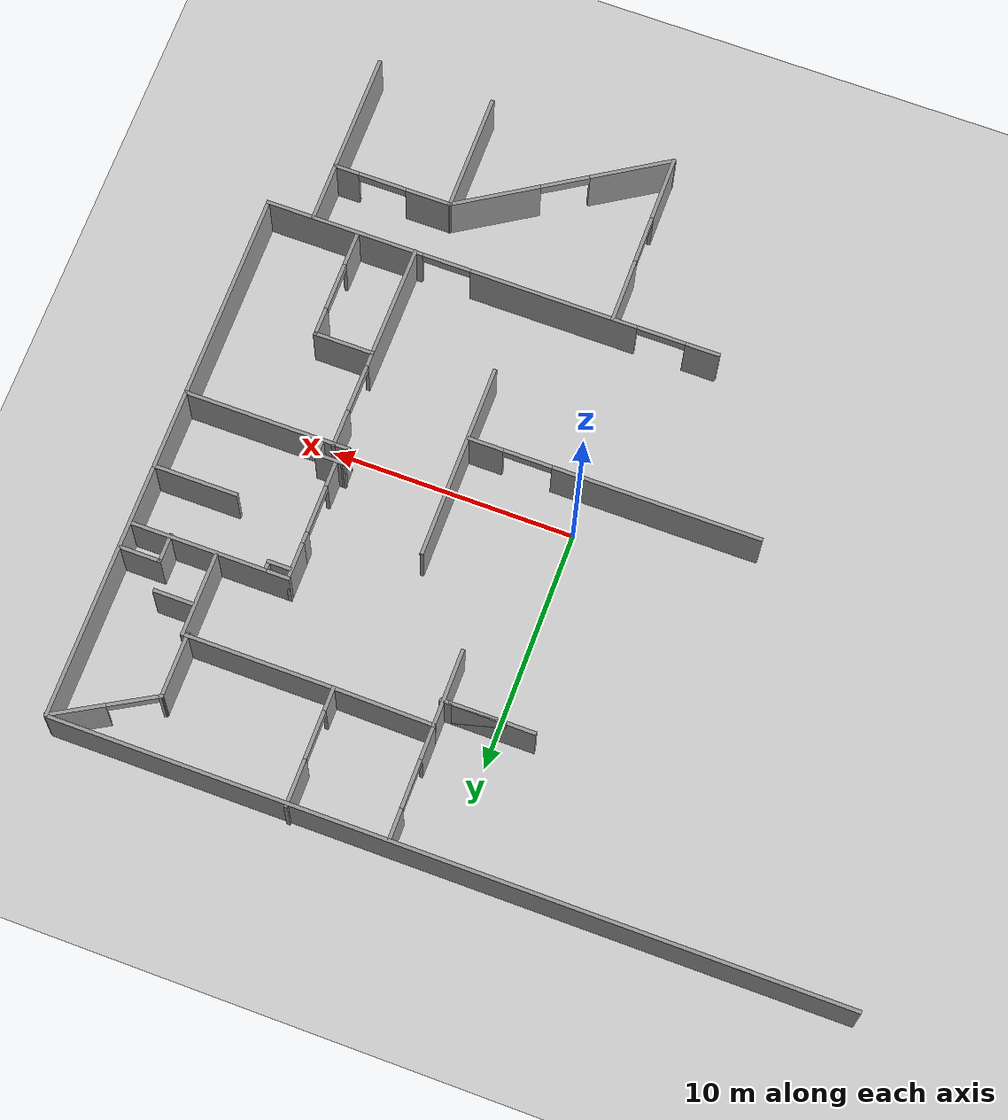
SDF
<sdf version="1.7">
 <world name="default">
  <model name="ground_plane">
   <static>1</static>
   <link name="link">
    <collision name="collision">
     <geometry><plane><normal>0 0 1</normal><size>100 100</size></plane></geometry>
     <surface><friction><ode><mu>100</mu><mu2>50</mu2></ode></friction></surface>
    </collision>
    <visual name="visual">
     <cast_shadows>0</cast_shadows>
     <geometry><plane><normal>0 0 1</normal><size>100 100</size></plane></geometry>
     <material>
      <script><uri>file://media/materials/scripts/gazebo.material</uri><name>Gazebo/Grey</name></script>
     </material>
    </visual>
   </link>
  </model>
  <model name="Untitled">
   <pose>-0.105598 -0.502872 0 0 -0 0</pose>
   <link name="Wall_0">
    <collision name="Wall_0_Collision">
     <geometry><box><size>32 0.15 2.5</size></box></geometry>
     <pose>0 0 1.25 0 -0 0</pose>
    </collision>
    <visual name="Wall_0_Visual">
     <pose>0 0 1.25 0 -0 0</pose>
     <geometry><box><size>32 0.15 2.5</size></box></geometry>
     <material>
      <script><uri>file://media/materials/scripts/gazebo.material</uri><name>Gazebo/Grey</name></script>
      <ambient>1 1 1 1</ambient>
     </material>
     <meta><layer>0</layer></meta>
    </visual>
    <pose>-0.015819 14.9519 0 0 -0 0</pose>
   </link>
   <link name="Wall_100">
    <pose>12.1601 -5.34541 0 0 -0 -1.5708</pose>
    <visual name="Wall_100_Visual_0">
     <pose>-1.76137 0 1.25 0 -0 0</pose>
     <geometry><box><size>1.22725 0.15 2.5</size></box></geometry>
     <material>
      <script><uri>file://media/materials/scripts/gazebo.material</uri><name>Gazebo/Grey</name></script>
      <ambient>1 1 1 1</ambient>
     </material>
     <meta><layer>0</layer></meta>
    </visual>
    <collision name="Wall_100_Collision_0">
     <geometry><box><size>1.22725 0.15 2.5</size></box></geometry>
     <pose>-1.76137 0 1.25 0 -0 0</pose>
    </collision>
    <visual name="Wall_100_Visual_1">
     <pose>1.61363 0 1.25 0 -0 0</pose>
     <geometry><box><size>1.52275 0.15 2.5</size></box></geometry>
     <material>
      <script><uri>file://media/materials/scripts/gazebo.material</uri><name>Gazebo/Grey</name></script>
      <ambient>1 1 1 1</ambient>
     </material>
     <meta><layer>0</layer></meta>
    </visual>
    <collision name="Wall_100_Collision_1">
     <geometry><box><size>1.52275 0.15 2.5</size></box></geometry>
     <pose>1.61363 0 1.25 0 -0 0</pose>
    </collision>
    <visual name="Wall_100_Visual_2">
     <pose>-0.147748 0 2.25 0 -0 0</pose>
     <geometry><box><size>2 0.15 0.5</size></box></geometry>
     <material>
      <script><uri>file://media/materials/scripts/gazebo.material</uri><name>Gazebo/Grey</name></script>
      <ambient>1 1 1 1</ambient>
     </material>
     <meta><layer>0</layer></meta>
    </visual>
    <collision name="Wall_100_Collision_2">
     <geometry><box><size>2 0.15 0.5</size></box></geometry>
     <pose>-0.147748 0 2.25 0 -0 0</pose>
    </collision>
   </link>
   <link name="Wall_102">
    <collision name="Wall_102_Collision">
     <geometry><box><size>0.75 0.15 2.5</size></box></geometry>
     <pose>0 0 1.25 0 -0 0</pose>
    </collision>
    <visual name="Wall_102_Visual">
     <pose>0 0 1.25 0 -0 0</pose>
     <geometry><box><size>0.75 0.15 2.5</size></box></geometry>
     <material>
      <script><uri>file://media/materials/scripts/gazebo.material</uri><name>Gazebo/Grey</name></script>
      <ambient>1 1 1 1</ambient>
     </material>
     <meta><layer>0</layer></meta>
    </visual>
    <pose>9.52193 1.02364 0 0 -0 3.14159</pose>
   </link>
   <link name="Wall_103">
    <collision name="Wall_103_Collision">
     <geometry><box><size>0.773696 0.15 2.5</size></box></geometry>
     <pose>0 0 1.25 0 -0 0</pose>
    </collision>
    <visual name="Wall_103_Visual">
     <pose>0 0 1.25 0 -0 0</pose>
     <geometry><box><size>0.773696 0.15 2.5</size></box></geometry>
     <material>
      <script><uri>file://media/materials/scripts/gazebo.material</uri><name>Gazebo/Grey</name></script>
      <ambient>1 1 1 1</ambient>
     </material>
     <meta><layer>0</layer></meta>
    </visual>
    <pose>9.2103 1.33527 0 0 -0 1.6081</pose>
   </link>
   <link name="Wall_104">
    <collision name="Wall_104_Collision">
     <geometry><box><size>1.25 0.15 2.5</size></box></geometry>
     <pose>0 0 1.25 0 -0 0</pose>
    </collision>
    <visual name="Wall_104_Visual">
     <pose>0 0 1.25 0 -0 0</pose>
     <geometry><box><size>1.25 0.15 2.5</size></box></geometry>
     <material>
      <script><uri>file://media/materials/scripts/gazebo.material</uri><name>Gazebo/Grey</name></script>
      <ambient>1 1 1 1</ambient>
     </material>
     <meta><layer>0</layer></meta>
    </visual>
    <pose>9.72541 1.6469 0 0 -0 0</pose>
   </link>
   <link name="Wall_107">
    <collision name="Wall_107_Collision">
     <geometry><box><size>0.75 0.15 2.5</size></box></geometry>
     <pose>0 0 1.25 0 -0 0</pose>
    </collision>
    <visual name="Wall_107_Visual">
     <pose>0 0 1.25 0 -0 0</pose>
     <geometry><box><size>0.75 0.15 2.5</size></box></geometry>
     <material>
      <script><uri>file://media/materials/scripts/gazebo.material</uri><name>Gazebo/Grey</name></script>
      <ambient>1 1 1 1</ambient>
     </material>
     <meta><layer>0</layer></meta>
    </visual>
    <pose>10.2754 1.3469 0 0 -0 -1.5708</pose>
   </link>
   <link name="Wall_109">
    <pose>9.47135 3.47041 0 0 -0 1.5708</pose>
    <visual name="Wall_109_Visual_0">
     <pose>-1.23605 0 1.25 0 -0 0</pose>
     <geometry><box><size>1.0279 0.15 2.5</size></box></geometry>
     <material>
      <script><uri>file://media/materials/scripts/gazebo.material</uri><name>Gazebo/Grey</name></script>
      <ambient>1 1 1 1</ambient>
     </material>
     <meta><layer>0</layer></meta>
    </visual>
    <collision name="Wall_109_Collision_0">
     <geometry><box><size>1.0279 0.15 2.5</size></box></geometry>
     <pose>-1.23605 0 1.25 0 -0 0</pose>
    </collision>
    <visual name="Wall_109_Visual_1">
     <pose>1.51395 0 1.25 0 -0 0</pose>
     <geometry><box><size>0.472105 0.15 2.5</size></box></geometry>
     <material>
      <script><uri>file://media/materials/scripts/gazebo.material</uri><name>Gazebo/Grey</name></script>
      <ambient>1 1 1 1</ambient>
     </material>
     <meta><layer>0</layer></meta>
    </visual>
    <collision name="Wall_109_Collision_1">
     <geometry><box><size>0.472105 0.15 2.5</size></box></geometry>
     <pose>1.51395 0 1.25 0 -0 0</pose>
    </collision>
    <visual name="Wall_109_Visual_2">
     <pose>0.277895 0 2.25 0 -0 0</pose>
     <geometry><box><size>2 0.15 0.5</size></box></geometry>
     <material>
      <script><uri>file://media/materials/scripts/gazebo.material</uri><name>Gazebo/Grey</name></script>
      <ambient>1 1 1 1</ambient>
     </material>
     <meta><layer>0</layer></meta>
    </visual>
    <collision name="Wall_109_Collision_2">
     <geometry><box><size>2 0.15 0.5</size></box></geometry>
     <pose>0.277895 0 2.25 0 -0 0</pose>
    </collision>
   </link>
   <link name="Wall_110">
    <collision name="Wall_110_Collision">
     <geometry><box><size>1.75 0.15 2.5</size></box></geometry>
     <pose>0 0 1.25 0 -0 0</pose>
    </collision>
    <visual name="Wall_110_Visual">
     <pose>0 0 1.25 0 -0 0</pose>
     <geometry><box><size>1.75 0.15 2.5</size></box></geometry>
     <material>
      <script><uri>file://media/materials/scripts/gazebo.material</uri><name>Gazebo/Grey</name></script>
      <ambient>1 1 1 1</ambient>
     </material>
     <meta><layer>0</layer></meta>
    </visual>
    <pose>9.47135 5.94541 0 0 -0 1.5708</pose>
   </link>
   <link name="Wall_111">
    <collision name="Wall_111_Collision">
     <geometry><box><size>6.5 0.15 2.5</size></box></geometry>
     <pose>0 0 1.25 0 -0 0</pose>
    </collision>
    <visual name="Wall_111_Visual">
     <pose>0 0 1.25 0 -0 0</pose>
     <geometry><box><size>6.5 0.15 2.5</size></box></geometry>
     <material>
      <script><uri>file://media/materials/scripts/gazebo.material</uri><name>Gazebo/Grey</name></script>
      <ambient>1 1 1 1</ambient>
     </material>
     <meta><layer>0</layer></meta>
    </visual>
    <pose>12.6463 6.74541 0 0 -0 0</pose>
   </link>
   <link name="Wall_113">
    <collision name="Wall_113_Collision">
     <geometry><box><size>3.5 0.15 2.5</size></box></geometry>
     <pose>0 0 1.25 0 -0 0</pose>
    </collision>
    <visual name="Wall_113_Visual">
     <pose>0 0 1.25 0 -0 0</pose>
     <geometry><box><size>3.5 0.15 2.5</size></box></geometry>
     <material>
      <script><uri>file://media/materials/scripts/gazebo.material</uri><name>Gazebo/Grey</name></script>
      <ambient>1 1 1 1</ambient>
     </material>
     <meta><layer>0</layer></meta>
    </visual>
    <pose>14.2653 4.27721 0 0 -0 3.14159</pose>
   </link>
   <link name="Wall_115">
    <collision name="Wall_115_Collision">
     <geometry><box><size>0.5 0.15 2.5</size></box></geometry>
     <pose>0 0 1.25 0 -0 0</pose>
    </collision>
    <visual name="Wall_115_Visual">
     <pose>0 0 1.25 0 -0 0</pose>
     <geometry><box><size>0.5 0.15 2.5</size></box></geometry>
     <material>
      <script><uri>file://media/materials/scripts/gazebo.material</uri><name>Gazebo/Grey</name></script>
      <ambient>1 1 1 1</ambient>
     </material>
     <meta><layer>0</layer></meta>
    </visual>
    <pose>10.4071 6.54333 0 0 -0 -1.5708</pose>
   </link>
   <link name="Wall_116">
    <collision name="Wall_116_Collision">
     <geometry><box><size>1 0.15 2.5</size></box></geometry>
     <pose>0 0 1.25 0 -0 0</pose>
    </collision>
    <visual name="Wall_116_Visual">
     <pose>0 0 1.25 0 -0 0</pose>
     <geometry><box><size>1 0.15 2.5</size></box></geometry>
     <material>
      <script><uri>file://media/materials/scripts/gazebo.material</uri><name>Gazebo/Grey</name></script>
      <ambient>1 1 1 1</ambient>
     </material>
     <meta><layer>0</layer></meta>
    </visual>
    <pose>9.98211 6.36833 0 0 -0 3.14159</pose>
   </link>
   <link name="Wall_118">
    <collision name="Wall_118_Collision">
     <geometry><box><size>3.5 0.15 2.5</size></box></geometry>
     <pose>0 0 1.25 0 -0 0</pose>
    </collision>
    <visual name="Wall_118_Visual">
     <pose>0 0 1.25 0 -0 0</pose>
     <geometry><box><size>3.5 0.15 2.5</size></box></geometry>
     <material>
      <script><uri>file://media/materials/scripts/gazebo.material</uri><name>Gazebo/Grey</name></script>
      <ambient>1 1 1 1</ambient>
     </material>
     <meta><layer>0</layer></meta>
    </visual>
    <pose>12.3892 8.52156 0 0 -0 1.5708</pose>
   </link>
   <link name="Wall_119">
    <collision name="Wall_119_Collision">
     <geometry><box><size>6.25 0.15 2.5</size></box></geometry>
     <pose>0 0 1.25 0 -0 0</pose>
    </collision>
    <visual name="Wall_119_Visual">
     <pose>0 0 1.25 0 -0 0</pose>
     <geometry><box><size>6.25 0.15 2.5</size></box></geometry>
     <material>
      <script><uri>file://media/materials/scripts/gazebo.material</uri><name>Gazebo/Grey</name></script>
      <ambient>1 1 1 1</ambient>
     </material>
     <meta><layer>0</layer></meta>
    </visual>
    <pose>9.33915 10.1966 0 0 -0 3.14159</pose>
   </link>
   <link name="Wall_121">
    <pose>6.28915 12.6216 0 0 -0 1.5708</pose>
    <visual name="Wall_121_Visual_0">
     <pose>-1.99093 0 1.25 0 -0 0</pose>
     <geometry><box><size>1.01815 0.15 2.5</size></box></geometry>
     <material>
      <script><uri>file://media/materials/scripts/gazebo.material</uri><name>Gazebo/Grey</name></script>
      <ambient>1 1 1 1</ambient>
     </material>
     <meta><layer>0</layer></meta>
    </visual>
    <collision name="Wall_121_Collision_0">
     <geometry><box><size>1.01815 0.15 2.5</size></box></geometry>
     <pose>-1.99093 0 1.25 0 -0 0</pose>
    </collision>
    <visual name="Wall_121_Visual_1">
     <pose>1.50907 0 1.25 0 -0 0</pose>
     <geometry><box><size>1.98185 0.15 2.5</size></box></geometry>
     <material>
      <script><uri>file://media/materials/scripts/gazebo.material</uri><name>Gazebo/Grey</name></script>
      <ambient>1 1 1 1</ambient>
     </material>
     <meta><layer>0</layer></meta>
    </visual>
    <collision name="Wall_121_Collision_1">
     <geometry><box><size>1.98185 0.15 2.5</size></box></geometry>
     <pose>1.50907 0 1.25 0 -0 0</pose>
    </collision>
    <visual name="Wall_121_Visual_2">
     <pose>-0.481853 0 2.25 0 -0 0</pose>
     <geometry><box><size>2 0.15 0.5</size></box></geometry>
     <material>
      <script><uri>file://media/materials/scripts/gazebo.material</uri><name>Gazebo/Grey</name></script>
      <ambient>1 1 1 1</ambient>
     </material>
     <meta><layer>0</layer></meta>
    </visual>
    <collision name="Wall_121_Collision_2">
     <geometry><box><size>2 0.15 0.5</size></box></geometry>
     <pose>-0.481853 0 2.25 0 -0 0</pose>
    </collision>
   </link>
   <link name="Wall_123">
    <pose>14.0857 13.8282 0 0 -0 -2.61799</pose>
    <visual name="Wall_123_Visual_0">
     <pose>-1.09346 0 1.25 0 -0 0</pose>
     <geometry><box><size>2.31309 0.15 2.5</size></box></geometry>
     <material>
      <script><uri>file://media/materials/scripts/gazebo.material</uri><name>Gazebo/Grey</name></script>
      <ambient>1 1 1 1</ambient>
     </material>
     <meta><layer>0</layer></meta>
    </visual>
    <collision name="Wall_123_Collision_0">
     <geometry><box><size>2.31309 0.15 2.5</size></box></geometry>
     <pose>-1.09346 0 1.25 0 -0 0</pose>
    </collision>
    <visual name="Wall_123_Visual_1">
     <pose>2.15654 0 1.25 0 -0 0</pose>
     <geometry><box><size>0.186911 0.15 2.5</size></box></geometry>
     <material>
      <script><uri>file://media/materials/scripts/gazebo.material</uri><name>Gazebo/Grey</name></script>
      <ambient>1 1 1 1</ambient>
     </material>
     <meta><layer>0</layer></meta>
    </visual>
    <collision name="Wall_123_Collision_1">
     <geometry><box><size>0.186911 0.15 2.5</size></box></geometry>
     <pose>2.15654 0 1.25 0 -0 0</pose>
    </collision>
    <visual name="Wall_123_Visual_2">
     <pose>1.06309 0 2.25 0 -0 0</pose>
     <geometry><box><size>2 0.15 0.5</size></box></geometry>
     <material>
      <script><uri>file://media/materials/scripts/gazebo.material</uri><name>Gazebo/Grey</name></script>
      <ambient>1 1 1 1</ambient>
     </material>
     <meta><layer>0</layer></meta>
    </visual>
    <collision name="Wall_123_Collision_2">
     <geometry><box><size>2 0.15 0.5</size></box></geometry>
     <pose>1.06309 0 2.25 0 -0 0</pose>
    </collision>
   </link>
   <link name="Wall_125">
    <collision name="Wall_125_Collision">
     <geometry><box><size>2.75 0.15 2.5</size></box></geometry>
     <pose>0 0 1.25 0 -0 0</pose>
    </collision>
    <visual name="Wall_125_Visual">
     <pose>0 0 1.25 0 -0 0</pose>
     <geometry><box><size>2.75 0.15 2.5</size></box></geometry>
     <material>
      <script><uri>file://media/materials/scripts/gazebo.material</uri><name>Gazebo/Grey</name></script>
      <ambient>1 1 1 1</ambient>
     </material>
     <meta><layer>0</layer></meta>
    </visual>
    <pose>12.2021 11.4407 0 0 -0 -1.5708</pose>
   </link>
   <link name="Wall_127">
    <collision name="Wall_127_Collision">
     <geometry><box><size>1.75 0.15 2.5</size></box></geometry>
     <pose>0 0 1.25 0 -0 0</pose>
    </collision>
    <visual name="Wall_127_Visual">
     <pose>0 0 1.25 0 -0 0</pose>
     <geometry><box><size>1.75 0.15 2.5</size></box></geometry>
     <material>
      <script><uri>file://media/materials/scripts/gazebo.material</uri><name>Gazebo/Grey</name></script>
      <ambient>1 1 1 1</ambient>
     </material>
     <meta><layer>0</layer></meta>
    </visual>
    <pose>13.2177 8.96513 0 0 -0 0</pose>
   </link>
   <link name="Wall_129">
    <collision name="Wall_129_Collision">
     <geometry><box><size>1.25 0.15 2.5</size></box></geometry>
     <pose>0 0 1.25 0 -0 0</pose>
    </collision>
    <visual name="Wall_129_Visual">
     <pose>0 0 1.25 0 -0 0</pose>
     <geometry><box><size>1.25 0.15 2.5</size></box></geometry>
     <material>
      <script><uri>file://media/materials/scripts/gazebo.material</uri><name>Gazebo/Grey</name></script>
      <ambient>1 1 1 1</ambient>
     </material>
     <meta><layer>0</layer></meta>
    </visual>
    <pose>14.3025 7.25087 0 0 -0 1.5708</pose>
   </link>
   <link name="Wall_130">
    <collision name="Wall_130_Collision">
     <geometry><box><size>1.75 0.15 2.5</size></box></geometry>
     <pose>0 0 1.25 0 -0 0</pose>
    </collision>
    <visual name="Wall_130_Visual">
     <pose>0 0 1.25 0 -0 0</pose>
     <geometry><box><size>1.75 0.15 2.5</size></box></geometry>
     <material>
      <script><uri>file://media/materials/scripts/gazebo.material</uri><name>Gazebo/Grey</name></script>
      <ambient>1 1 1 1</ambient>
     </material>
     <meta><layer>0</layer></meta>
    </visual>
    <pose>15.1025 7.80088 0 0 -0 0</pose>
   </link>
   <link name="Wall_135">
    <collision name="Wall_135_Collision">
     <geometry><box><size>3.25 0.15 2.5</size></box></geometry>
     <pose>0 0 1.25 0 -0 0</pose>
    </collision>
    <visual name="Wall_135_Visual">
     <pose>0 0 1.25 0 -0 0</pose>
     <geometry><box><size>3.25 0.15 2.5</size></box></geometry>
     <material>
      <script><uri>file://media/materials/scripts/gazebo.material</uri><name>Gazebo/Grey</name></script>
      <ambient>1 1 1 1</ambient>
     </material>
     <meta><layer>0</layer></meta>
    </visual>
    <pose>2.2561 8.69462 0 0 -0 1.5708</pose>
   </link>
   <link name="Wall_136">
    <collision name="Wall_136_Collision">
     <geometry><box><size>4.18334 0.15 2.5</size></box></geometry>
     <pose>0 0 1.25 0 -0 0</pose>
    </collision>
    <visual name="Wall_136_Visual">
     <pose>0 0 1.25 0 -0 0</pose>
     <geometry><box><size>4.18334 0.15 2.5</size></box></geometry>
     <material>
      <script><uri>file://media/materials/scripts/gazebo.material</uri><name>Gazebo/Grey</name></script>
      <ambient>1 1 1 1</ambient>
     </material>
     <meta><layer>0</layer></meta>
    </visual>
    <pose>4.27263 10.2206 0 0 -0 -0.011916</pose>
   </link>
   <link name="Wall_14">
    <collision name="Wall_14_Collision">
     <geometry><box><size>8.15 0.15 2.5</size></box></geometry>
     <pose>0 0 1.25 0 -0 0</pose>
    </collision>
    <visual name="Wall_14_Visual">
     <pose>0 0 1.25 0 -0 0</pose>
     <geometry><box><size>8.15 0.15 2.5</size></box></geometry>
     <material>
      <script><uri>file://media/materials/scripts/gazebo.material</uri><name>Gazebo/Grey</name></script>
      <ambient>1 1 1 1</ambient>
     </material>
     <meta><layer>0</layer></meta>
    </visual>
    <pose>5.05918 -0.001359 0 0 -0 1.5708</pose>
   </link>
   <link name="Wall_145">
    <pose>0.299408 9.22055 0 0 -0 0</pose>
    <visual name="Wall_145_Visual_0">
     <pose>0 0 1.25 0 -0 0</pose>
     <geometry><box><size>3.5 0.15 2.5</size></box></geometry>
     <material>
      <script><uri>file://media/materials/scripts/gazebo.material</uri><name>Gazebo/Grey</name></script>
      <ambient>1 1 1 1</ambient>
     </material>
     <meta><layer>0</layer></meta>
    </visual>
    <collision name="Wall_145_Collision_0">
     <geometry><box><size>3.5 0.15 2.5</size></box></geometry>
     <pose>0 0 1.25 0 -0 0</pose>
    </collision>
    <visual name="Wall_145_Visual_1">
     <pose>0.58502 0 1.25 0 -0 0</pose>
     <geometry><box><size>2.32996 0.15 2.5</size></box></geometry>
     <material>
      <script><uri>file://media/materials/scripts/gazebo.material</uri><name>Gazebo/Grey</name></script>
      <ambient>1 1 1 1</ambient>
     </material>
     <meta><layer>0</layer></meta>
    </visual>
    <collision name="Wall_145_Collision_1">
     <geometry><box><size>2.32996 0.15 2.5</size></box></geometry>
     <pose>0.58502 0 1.25 0 -0 0</pose>
    </collision>
   </link>
   <link name="Wall_146">
    <collision name="Wall_146_Collision">
     <geometry><box><size>0.5 0.15 2.5</size></box></geometry>
     <pose>0 0 1.25 0 -0 0</pose>
    </collision>
    <visual name="Wall_146_Visual">
     <pose>0 0 1.25 0 -0 0</pose>
     <geometry><box><size>0.5 0.15 2.5</size></box></geometry>
     <material>
      <script><uri>file://media/materials/scripts/gazebo.material</uri><name>Gazebo/Grey</name></script>
      <ambient>1 1 1 1</ambient>
     </material>
     <meta><layer>0</layer></meta>
    </visual>
    <pose>2.14941 9.22055 0 0 -0 0</pose>
   </link>
   <link name="Wall_148">
    <pose>2.2561 12.5446 0 0 -0 1.5708</pose>
    <visual name="Wall_148_Visual_0">
     <pose>-1.63102 0 1.25 0 -0 0</pose>
     <geometry><box><size>1.48795 0.15 2.5</size></box></geometry>
     <material>
      <script><uri>file://media/materials/scripts/gazebo.material</uri><name>Gazebo/Grey</name></script>
      <ambient>1 1 1 1</ambient>
     </material>
     <meta><layer>0</layer></meta>
    </visual>
    <collision name="Wall_148_Collision_0">
     <geometry><box><size>1.48795 0.15 2.5</size></box></geometry>
     <pose>-1.63102 0 1.25 0 -0 0</pose>
    </collision>
    <visual name="Wall_148_Visual_1">
     <pose>1.74398 0 1.25 0 -0 0</pose>
     <geometry><box><size>1.26205 0.15 2.5</size></box></geometry>
     <material>
      <script><uri>file://media/materials/scripts/gazebo.material</uri><name>Gazebo/Grey</name></script>
      <ambient>1 1 1 1</ambient>
     </material>
     <meta><layer>0</layer></meta>
    </visual>
    <collision name="Wall_148_Collision_1">
     <geometry><box><size>1.26205 0.15 2.5</size></box></geometry>
     <pose>1.74398 0 1.25 0 -0 0</pose>
    </collision>
    <visual name="Wall_148_Visual_2">
     <pose>0.112949 0 2.25 0 -0 0</pose>
     <geometry><box><size>2 0.15 0.5</size></box></geometry>
     <material>
      <script><uri>file://media/materials/scripts/gazebo.material</uri><name>Gazebo/Grey</name></script>
      <ambient>1 1 1 1</ambient>
     </material>
     <meta><layer>0</layer></meta>
    </visual>
    <collision name="Wall_148_Collision_2">
     <geometry><box><size>2 0.15 0.5</size></box></geometry>
     <pose>0.112949 0 2.25 0 -0 0</pose>
    </collision>
   </link>
   <link name="Wall_18">
    <pose>-0.932893 -1.01205 0 0 -0 0</pose>
    <visual name="Wall_18_Visual_0">
     <pose>-1.73618 0 1.25 0 -0 0</pose>
     <geometry><box><size>8.52764 0.15 2.5</size></box></geometry>
     <material>
      <script><uri>file://media/materials/scripts/gazebo.material</uri><name>Gazebo/Grey</name></script>
      <ambient>1 1 1 1</ambient>
     </material>
     <meta><layer>0</layer></meta>
    </visual>
    <collision name="Wall_18_Collision_0">
     <geometry><box><size>8.52764 0.15 2.5</size></box></geometry>
     <pose>-1.73618 0 1.25 0 -0 0</pose>
    </collision>
    <visual name="Wall_18_Visual_1">
     <pose>5.26382 0 1.25 0 -0 0</pose>
     <geometry><box><size>1.47236 0.15 2.5</size></box></geometry>
     <material>
      <script><uri>file://media/materials/scripts/gazebo.material</uri><name>Gazebo/Grey</name></script>
      <ambient>1 1 1 1</ambient>
     </material>
     <meta><layer>0</layer></meta>
    </visual>
    <collision name="Wall_18_Collision_1">
     <geometry><box><size>1.47236 0.15 2.5</size></box></geometry>
     <pose>5.26382 0 1.25 0 -0 0</pose>
    </collision>
    <visual name="Wall_18_Visual_2">
     <pose>3.52764 0 2.25 0 -0 0</pose>
     <geometry><box><size>2 0.15 0.5</size></box></geometry>
     <material>
      <script><uri>file://media/materials/scripts/gazebo.material</uri><name>Gazebo/Grey</name></script>
      <ambient>1 1 1 1</ambient>
     </material>
     <meta><layer>0</layer></meta>
    </visual>
    <collision name="Wall_18_Collision_2">
     <geometry><box><size>2 0.15 0.5</size></box></geometry>
     <pose>3.52764 0 2.25 0 -0 0</pose>
    </collision>
   </link>
   <link name="Wall_79">
    <pose>6.54429 -7.68426 0 0 -0 0</pose>
    <visual name="Wall_79_Visual_0">
     <pose>-8.79057 0 1.25 0 -0 0</pose>
     <geometry><box><size>1.41886 0.15 2.5</size></box></geometry>
     <material>
      <script><uri>file://media/materials/scripts/gazebo.material</uri><name>Gazebo/Grey</name></script>
      <ambient>1 1 1 1</ambient>
     </material>
     <meta><layer>0</layer></meta>
    </visual>
    <collision name="Wall_79_Collision_0">
     <geometry><box><size>1.41886 0.15 2.5</size></box></geometry>
     <pose>-8.79057 0 1.25 0 -0 0</pose>
    </collision>
    <visual name="Wall_79_Visual_1">
     <pose>-2.60617 0 1.25 0 -0 0</pose>
     <geometry><box><size>6.94993 0.15 2.5</size></box></geometry>
     <material>
      <script><uri>file://media/materials/scripts/gazebo.material</uri><name>Gazebo/Grey</name></script>
      <ambient>1 1 1 1</ambient>
     </material>
     <meta><layer>0</layer></meta>
    </visual>
    <collision name="Wall_79_Collision_1">
     <geometry><box><size>6.94993 0.15 2.5</size></box></geometry>
     <pose>-2.60617 0 1.25 0 -0 0</pose>
    </collision>
    <visual name="Wall_79_Visual_2">
     <pose>6.1844 0 1.25 0 -0 0</pose>
     <geometry><box><size>6.63121 0.15 2.5</size></box></geometry>
     <material>
      <script><uri>file://media/materials/scripts/gazebo.material</uri><name>Gazebo/Grey</name></script>
      <ambient>1 1 1 1</ambient>
     </material>
     <meta><layer>0</layer></meta>
    </visual>
    <collision name="Wall_79_Collision_2">
     <geometry><box><size>6.63121 0.15 2.5</size></box></geometry>
     <pose>6.1844 0 1.25 0 -0 0</pose>
    </collision>
    <visual name="Wall_79_Visual_3">
     <pose>-7.08114 0 2.25 0 -0 0</pose>
     <geometry><box><size>2 0.15 0.5</size></box></geometry>
     <material>
      <script><uri>file://media/materials/scripts/gazebo.material</uri><name>Gazebo/Grey</name></script>
      <ambient>1 1 1 1</ambient>
     </material>
     <meta><layer>0</layer></meta>
    </visual>
    <collision name="Wall_79_Collision_3">
     <geometry><box><size>2 0.15 0.5</size></box></geometry>
     <pose>-7.08114 0 2.25 0 -0 0</pose>
    </collision>
    <visual name="Wall_79_Visual_4">
     <pose>1.86879 0 2.25 0 -0 0</pose>
     <geometry><box><size>2 0.15 0.5</size></box></geometry>
     <material>
      <script><uri>file://media/materials/scripts/gazebo.material</uri><name>Gazebo/Grey</name></script>
      <ambient>1 1 1 1</ambient>
     </material>
     <meta><layer>0</layer></meta>
    </visual>
    <collision name="Wall_79_Collision_4">
     <geometry><box><size>2 0.15 0.5</size></box></geometry>
     <pose>1.86879 0 2.25 0 -0 0</pose>
    </collision>
   </link>
   <link name="Wall_81">
    <pose>1.4776 -11.3593 0 0 -0 -1.5708</pose>
    <visual name="Wall_81_Visual_0">
     <pose>-2.38039 0 1.25 0 -0 0</pose>
     <geometry><box><size>2.73922 0.15 2.5</size></box></geometry>
     <material>
      <script><uri>file://media/materials/scripts/gazebo.material</uri><name>Gazebo/Grey</name></script>
      <ambient>1 1 1 1</ambient>
     </material>
     <meta><layer>0</layer></meta>
    </visual>
    <collision name="Wall_81_Collision_0">
     <geometry><box><size>2.73922 0.15 2.5</size></box></geometry>
     <pose>-2.38039 0 1.25 0 -0 0</pose>
    </collision>
    <visual name="Wall_81_Visual_1">
     <pose>2.36961 0 1.25 0 -0 0</pose>
     <geometry><box><size>2.76078 0.15 2.5</size></box></geometry>
     <material>
      <script><uri>file://media/materials/scripts/gazebo.material</uri><name>Gazebo/Grey</name></script>
      <ambient>1 1 1 1</ambient>
     </material>
     <meta><layer>0</layer></meta>
    </visual>
    <collision name="Wall_81_Collision_1">
     <geometry><box><size>2.76078 0.15 2.5</size></box></geometry>
     <pose>2.36961 0 1.25 0 -0 0</pose>
    </collision>
    <visual name="Wall_81_Visual_2">
     <pose>-0.010785 0 2.25 0 -0 0</pose>
     <geometry><box><size>2 0.15 0.5</size></box></geometry>
     <material>
      <script><uri>file://media/materials/scripts/gazebo.material</uri><name>Gazebo/Grey</name></script>
      <ambient>1 1 1 1</ambient>
     </material>
     <meta><layer>0</layer></meta>
    </visual>
    <collision name="Wall_81_Collision_2">
     <geometry><box><size>2 0.15 0.5</size></box></geometry>
     <pose>-0.010785 0 2.25 0 -0 0</pose>
    </collision>
   </link>
   <link name="Wall_87">
    <pose>11.6115 -10.1109 0 0 -0 3.14159</pose>
    <visual name="Wall_87_Visual_0">
     <pose>-1.96604 0 1.25 0 -0 0</pose>
     <geometry><box><size>1.06791 0.15 2.5</size></box></geometry>
     <material>
      <script><uri>file://media/materials/scripts/gazebo.material</uri><name>Gazebo/Grey</name></script>
      <ambient>1 1 1 1</ambient>
     </material>
     <meta><layer>0</layer></meta>
    </visual>
    <collision name="Wall_87_Collision_0">
     <geometry><box><size>1.06791 0.15 2.5</size></box></geometry>
     <pose>-1.96604 0 1.25 0 -0 0</pose>
    </collision>
    <visual name="Wall_87_Visual_1">
     <pose>1.53396 0 1.25 0 -0 0</pose>
     <geometry><box><size>1.93209 0.15 2.5</size></box></geometry>
     <material>
      <script><uri>file://media/materials/scripts/gazebo.material</uri><name>Gazebo/Grey</name></script>
      <ambient>1 1 1 1</ambient>
     </material>
     <meta><layer>0</layer></meta>
    </visual>
    <collision name="Wall_87_Collision_1">
     <geometry><box><size>1.93209 0.15 2.5</size></box></geometry>
     <pose>1.53396 0 1.25 0 -0 0</pose>
    </collision>
    <visual name="Wall_87_Visual_2">
     <pose>-0.432087 0 2.25 0 -0 0</pose>
     <geometry><box><size>2 0.15 0.5</size></box></geometry>
     <material>
      <script><uri>file://media/materials/scripts/gazebo.material</uri><name>Gazebo/Grey</name></script>
      <ambient>1 1 1 1</ambient>
     </material>
     <meta><layer>0</layer></meta>
    </visual>
    <collision name="Wall_87_Collision_2">
     <geometry><box><size>2 0.15 0.5</size></box></geometry>
     <pose>-0.432087 0 2.25 0 -0 0</pose>
    </collision>
   </link>
   <link name="Wall_88">
    <collision name="Wall_88_Collision">
     <geometry><box><size>5 0.15 2.5</size></box></geometry>
     <pose>0 0 1.25 0 -0 0</pose>
    </collision>
    <visual name="Wall_88_Visual">
     <pose>0 0 1.25 0 -0 0</pose>
     <geometry><box><size>5 0.15 2.5</size></box></geometry>
     <material>
      <script><uri>file://media/materials/scripts/gazebo.material</uri><name>Gazebo/Grey</name></script>
      <ambient>1 1 1 1</ambient>
     </material>
     <meta><layer>0</layer></meta>
    </visual>
    <pose>9.18647 -12.5359 0 0 -0 -1.5708</pose>
   </link>
   <link name="Wall_90">
    <pose>5.33204 -12.5726 0 0 -0 -2.57323</pose>
    <visual name="Wall_90_Visual_0">
     <pose>-2.76384 0 1.25 0 -0 0</pose>
     <geometry><box><size>3.76922 0.15 2.5</size></box></geometry>
     <material>
      <script><uri>file://media/materials/scripts/gazebo.material</uri><name>Gazebo/Grey</name></script>
      <ambient>1 1 1 1</ambient>
     </material>
     <meta><layer>0</layer></meta>
    </visual>
    <collision name="Wall_90_Collision_0">
     <geometry><box><size>3.76922 0.15 2.5</size></box></geometry>
     <pose>-2.76384 0 1.25 0 -0 0</pose>
    </collision>
    <visual name="Wall_90_Visual_1">
     <pose>2.88461 0 1.25 0 -0 0</pose>
     <geometry><box><size>3.52768 0.15 2.5</size></box></geometry>
     <material>
      <script><uri>file://media/materials/scripts/gazebo.material</uri><name>Gazebo/Grey</name></script>
      <ambient>1 1 1 1</ambient>
     </material>
     <meta><layer>0</layer></meta>
    </visual>
    <collision name="Wall_90_Collision_1">
     <geometry><box><size>3.52768 0.15 2.5</size></box></geometry>
     <pose>2.88461 0 1.25 0 -0 0</pose>
    </collision>
    <visual name="Wall_90_Visual_2">
     <pose>0.120768 0 2.25 0 -0 0</pose>
     <geometry><box><size>2 0.15 0.5</size></box></geometry>
     <material>
      <script><uri>file://media/materials/scripts/gazebo.material</uri><name>Gazebo/Grey</name></script>
      <ambient>1 1 1 1</ambient>
     </material>
     <meta><layer>0</layer></meta>
    </visual>
    <collision name="Wall_90_Collision_2">
     <geometry><box><size>2 0.15 0.5</size></box></geometry>
     <pose>0.120768 0 2.25 0 -0 0</pose>
    </collision>
   </link>
   <link name="Wall_92">
    <collision name="Wall_92_Collision">
     <geometry><box><size>22.75 0.15 2.5</size></box></geometry>
     <pose>0 0 1.25 0 -0 0</pose>
    </collision>
    <visual name="Wall_92_Visual">
     <pose>0 0 1.25 0 -0 0</pose>
     <geometry><box><size>22.75 0.15 2.5</size></box></geometry>
     <material>
      <script><uri>file://media/materials/scripts/gazebo.material</uri><name>Gazebo/Grey</name></script>
      <ambient>1 1 1 1</ambient>
     </material>
     <meta><layer>0</layer></meta>
    </visual>
    <pose>15.9693 3.61574 0 0 -0 1.5708</pose>
   </link>
   <link name="Wall_94">
    <collision name="Wall_94_Collision">
     <geometry><box><size>7.5 0.15 2.5</size></box></geometry>
     <pose>0 0 1.25 0 -0 0</pose>
    </collision>
    <visual name="Wall_94_Visual">
     <pose>0 0 1.25 0 -0 0</pose>
     <geometry><box><size>7.5 0.15 2.5</size></box></geometry>
     <material>
      <script><uri>file://media/materials/scripts/gazebo.material</uri><name>Gazebo/Grey</name></script>
      <ambient>1 1 1 1</ambient>
     </material>
     <meta><layer>0</layer></meta>
    </visual>
    <pose>14.0592 -11.3802 0 0 -0 1.5708</pose>
   </link>
   <link name="Wall_96">
    <pose>9.7818 -3.3238 0 0 -0 1.56162</pose>
    <visual name="Wall_96_Visual_0">
     <pose>-1.79292 0 1.25 0 -0 0</pose>
     <geometry><box><size>5.3129 0.15 2.5</size></box></geometry>
     <material>
      <script><uri>file://media/materials/scripts/gazebo.material</uri><name>Gazebo/Grey</name></script>
      <ambient>1 1 1 1</ambient>
     </material>
     <meta><layer>0</layer></meta>
    </visual>
    <collision name="Wall_96_Collision_0">
     <geometry><box><size>5.3129 0.15 2.5</size></box></geometry>
     <pose>-1.79292 0 1.25 0 -0 0</pose>
    </collision>
    <visual name="Wall_96_Visual_1">
     <pose>3.65645 0 1.25 0 -0 0</pose>
     <geometry><box><size>1.58584 0.15 2.5</size></box></geometry>
     <material>
      <script><uri>file://media/materials/scripts/gazebo.material</uri><name>Gazebo/Grey</name></script>
      <ambient>1 1 1 1</ambient>
     </material>
     <meta><layer>0</layer></meta>
    </visual>
    <collision name="Wall_96_Collision_1">
     <geometry><box><size>1.58584 0.15 2.5</size></box></geometry>
     <pose>3.65645 0 1.25 0 -0 0</pose>
    </collision>
    <visual name="Wall_96_Visual_2">
     <pose>1.86353 0 2.25 0 -0 0</pose>
     <geometry><box><size>2 0.15 0.5</size></box></geometry>
     <material>
      <script><uri>file://media/materials/scripts/gazebo.material</uri><name>Gazebo/Grey</name></script>
      <ambient>1 1 1 1</ambient>
     </material>
     <meta><layer>0</layer></meta>
    </visual>
    <collision name="Wall_96_Collision_2">
     <geometry><box><size>2 0.15 0.5</size></box></geometry>
     <pose>1.86353 0 2.25 0 -0 0</pose>
    </collision>
   </link>
   <link name="Wall_97">
    <collision name="Wall_97_Collision">
     <geometry><box><size>6.25 0.15 2.5</size></box></geometry>
     <pose>0 0 1.25 0 -0 0</pose>
    </collision>
    <visual name="Wall_97_Visual">
     <pose>0 0 1.25 0 -0 0</pose>
     <geometry><box><size>6.25 0.15 2.5</size></box></geometry>
     <material>
      <script><uri>file://media/materials/scripts/gazebo.material</uri><name>Gazebo/Grey</name></script>
      <ambient>1 1 1 1</ambient>
     </material>
     <meta><layer>0</layer></meta>
    </visual>
    <pose>12.8719 1.02364 0 0 -0 0</pose>
   </link>
   <link name="Wall_99">
    <collision name="Wall_99_Collision">
     <geometry><box><size>2.5 0.15 2.5</size></box></geometry>
     <pose>0 0 1.25 0 -0 0</pose>
    </collision>
    <visual name="Wall_99_Visual">
     <pose>0 0 1.25 0 -0 0</pose>
     <geometry><box><size>2.5 0.15 2.5</size></box></geometry>
     <material>
      <script><uri>file://media/materials/scripts/gazebo.material</uri><name>Gazebo/Grey</name></script>
      <ambient>1 1 1 1</ambient>
     </material>
     <meta><layer>0</layer></meta>
    </visual>
    <pose>10.9851 -3.04541 0 0 -0 0</pose>
   </link>
   <static>1</static>
  </model>
 </world>
</sdf>
